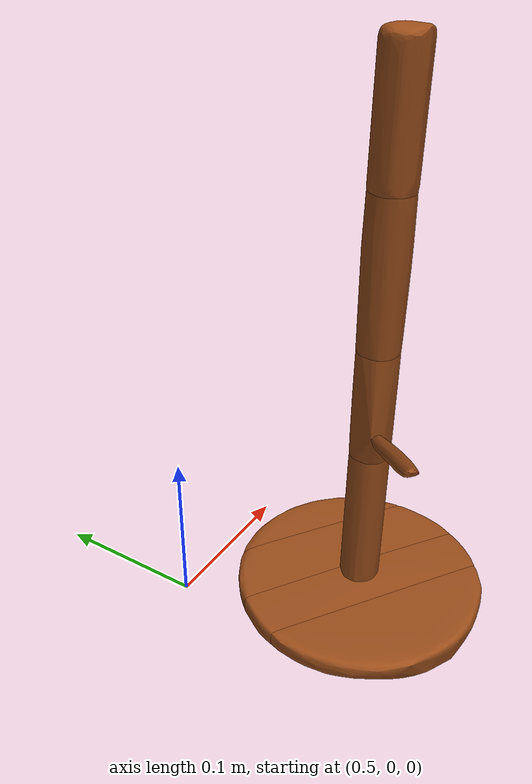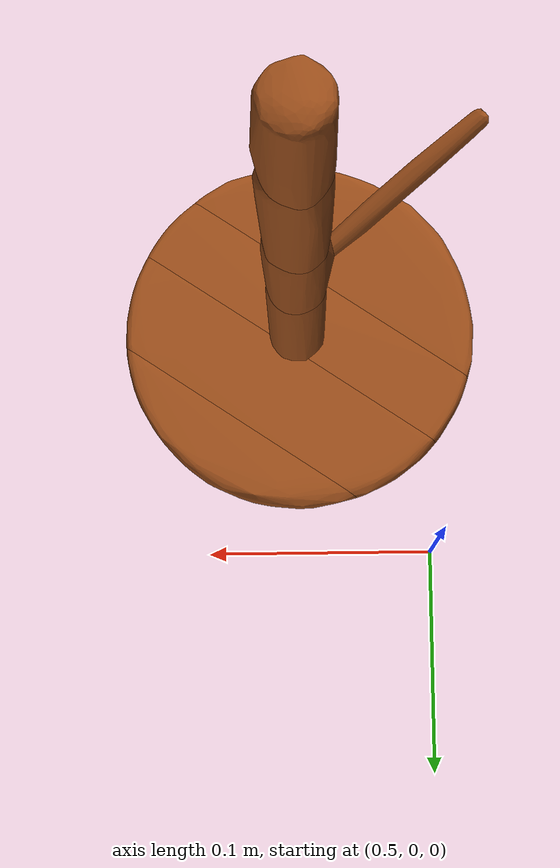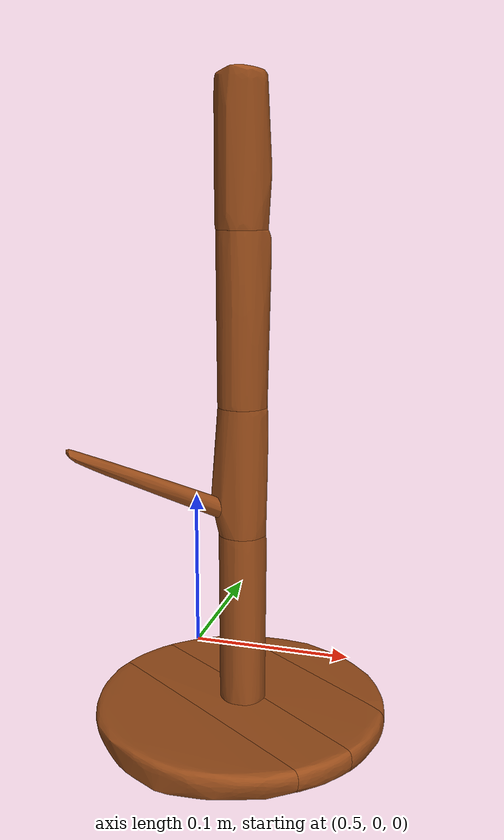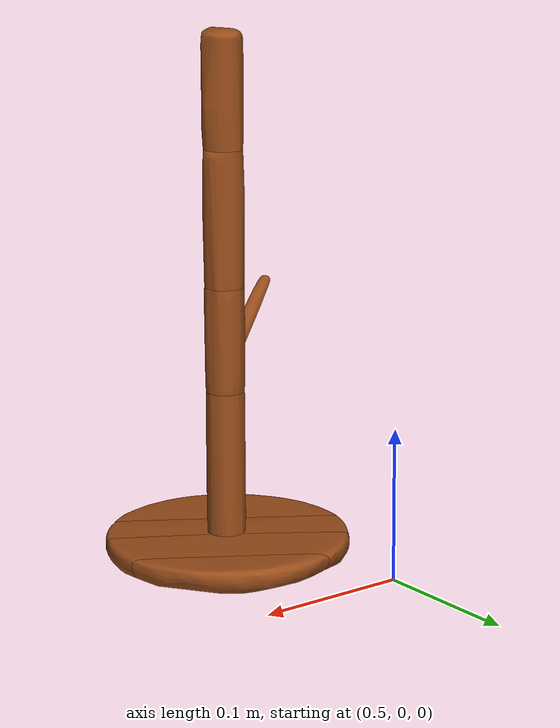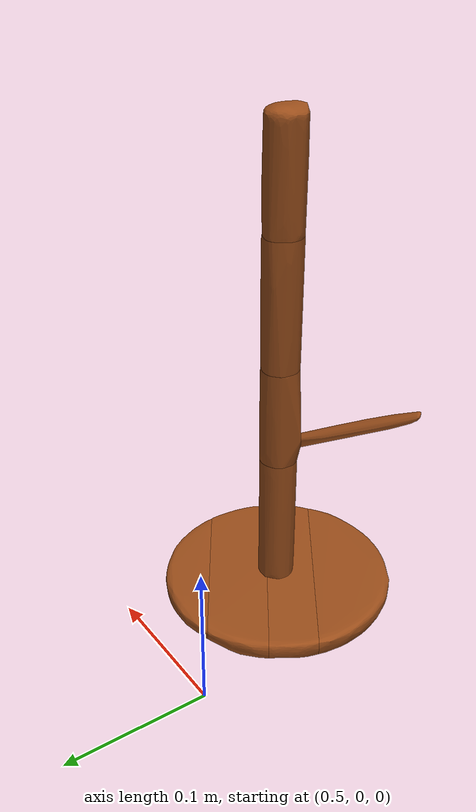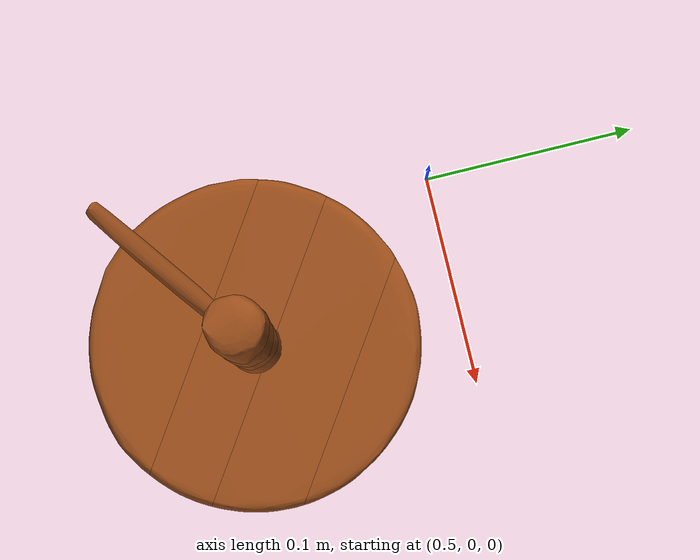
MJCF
<mujoco model="040_rack_1">
  <asset>
    <mesh name="040_rack_1_mesh" file="/home/yuan/codegen/codegen/datagen_clean/assets/objects/040_rack/1/040_rack_1.stl" scale="1 1 1" />
    <mesh name="040_rack_1_part_0" file="/home/yuan/codegen/codegen/datagen_clean/assets/objects/040_rack/1/decomposed/040_rack_1_decomposed_0.stl" scale="1 1 1" />
    <mesh name="040_rack_1_part_1" file="/home/yuan/codegen/codegen/datagen_clean/assets/objects/040_rack/1/decomposed/040_rack_1_decomposed_1.stl" scale="1 1 1" />
    <mesh name="040_rack_1_part_2" file="/home/yuan/codegen/codegen/datagen_clean/assets/objects/040_rack/1/decomposed/040_rack_1_decomposed_2.stl" scale="1 1 1" />
    <mesh name="040_rack_1_part_3" file="/home/yuan/codegen/codegen/datagen_clean/assets/objects/040_rack/1/decomposed/040_rack_1_decomposed_3.stl" scale="1 1 1" />
    <mesh name="040_rack_1_part_4" file="/home/yuan/codegen/codegen/datagen_clean/assets/objects/040_rack/1/decomposed/040_rack_1_decomposed_4.stl" scale="1 1 1" />
    <mesh name="040_rack_1_part_5" file="/home/yuan/codegen/codegen/datagen_clean/assets/objects/040_rack/1/decomposed/040_rack_1_decomposed_5.stl" scale="1 1 1" />
    <mesh name="040_rack_1_part_6" file="/home/yuan/codegen/codegen/datagen_clean/assets/objects/040_rack/1/decomposed/040_rack_1_decomposed_6.stl" scale="1 1 1" />
    <mesh name="040_rack_1_part_7" file="/home/yuan/codegen/codegen/datagen_clean/assets/objects/040_rack/1/decomposed/040_rack_1_decomposed_7.stl" scale="1 1 1" />
    <mesh name="040_rack_1_part_8" file="/home/yuan/codegen/codegen/datagen_clean/assets/objects/040_rack/1/decomposed/040_rack_1_decomposed_8.stl" scale="1 1 1" />
  </asset>
  <worldbody>
    <body name="040_rack_1" pos="0.55632753 -0.1009843 0" quat="-0.469471490248069 0.0 0.0 0.8829480202176442">
      <freejoint name="040_rack_1_freejoint" /><geom name="040_rack_1_geom_0" type="mesh" mesh="040_rack_1_part_0" friction="10 5 5" condim="6" rgba="0.6 0.3 0.1 1" mass="1" />
      <geom name="040_rack_1_geom_1" type="mesh" mesh="040_rack_1_part_1" friction="10 5 5" condim="6" rgba="0.6 0.3 0.1 1" mass="1" />
      <geom name="040_rack_1_geom_2" type="mesh" mesh="040_rack_1_part_2" friction="10 5 5" condim="6" rgba="0.6 0.3 0.1 1" mass="1" />
      <geom name="040_rack_1_geom_3" type="mesh" mesh="040_rack_1_part_3" friction="10 5 5" condim="6" rgba="0.6 0.3 0.1 1" mass="1" />
      <geom name="040_rack_1_geom_4" type="mesh" mesh="040_rack_1_part_4" friction="10 5 5" condim="6" rgba="0.6 0.3 0.1 1" mass="1" />
      <geom name="040_rack_1_geom_5" type="mesh" mesh="040_rack_1_part_5" friction="10 5 5" condim="6" rgba="0.6 0.3 0.1 1" mass="1" />
      <geom name="040_rack_1_geom_6" type="mesh" mesh="040_rack_1_part_6" friction="10 5 5" condim="6" rgba="0.6 0.3 0.1 1" mass="1" />
      <geom name="040_rack_1_geom_7" type="mesh" mesh="040_rack_1_part_7" friction="10 5 5" condim="6" rgba="0.6 0.3 0.1 1" mass="1" />
      <geom name="040_rack_1_geom_8" type="mesh" mesh="040_rack_1_part_8" friction="10 5 5" condim="6" rgba="0.6 0.3 0.1 1" mass="1" />
    <site name="040_rack_1_kp_0" pos="0.080602 -0.025331 0.164358" size="0.01" rgba="0 0 0 0" type="sphere" /><site name="040_rack_1_kp_1" pos="0.010379 -0.007755 0.132310" size="0.01" rgba="0 0 0 0" type="sphere" /></body>
  </worldbody>
</mujoco>
